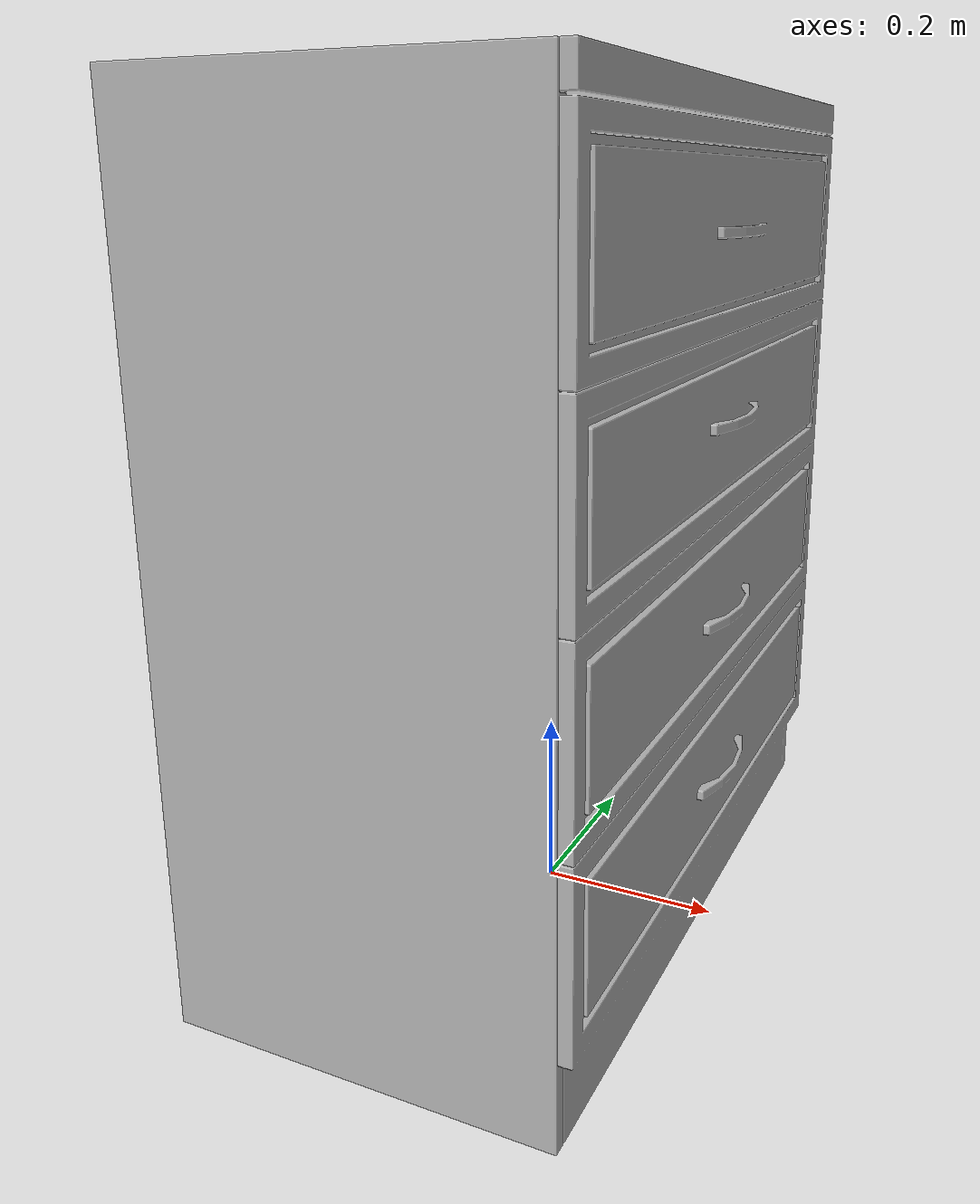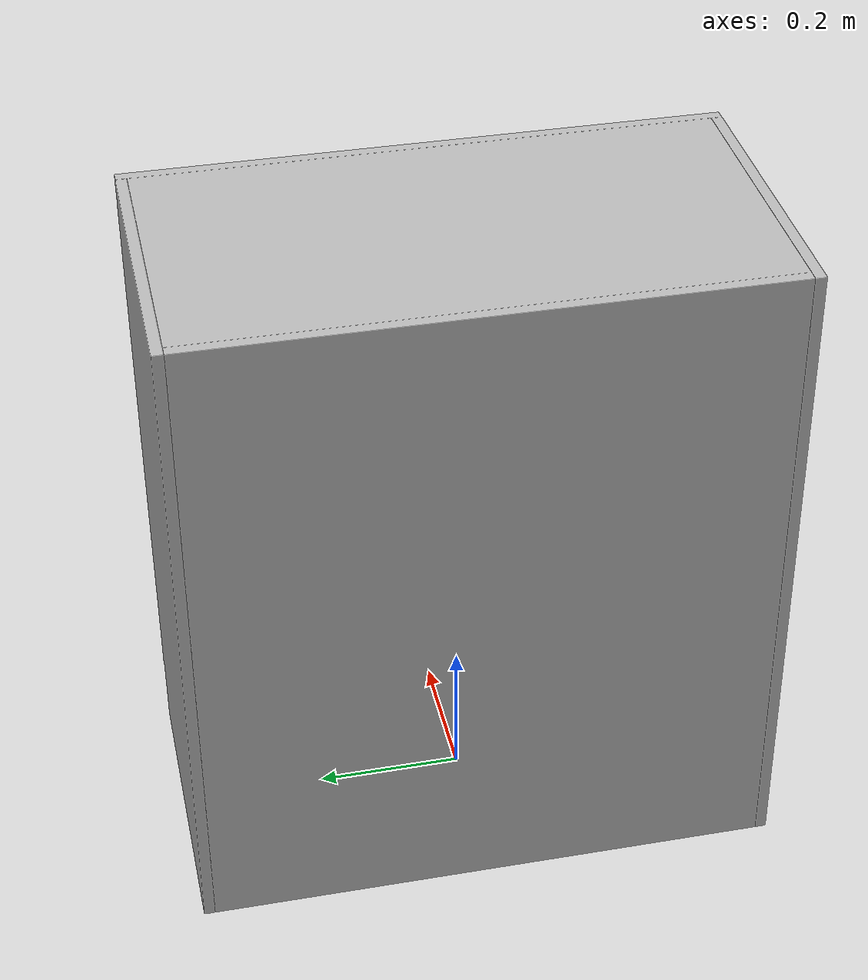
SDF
<?xml version='1.0'?>
<sdf version='1.4'>
  <model name='397'>
    <pose>0 0 0 0 0 0</pose>
    <static>true</static>
    <link name='link'>
      <collision name='collision'>
        <pose>0 0 0 0 0 0</pose>
        <geometry>
          <box>
            <size>0.449634 0.79977 2</size>
          </box>
        </geometry>
      </collision>
      <visual name='visual'>
        <pose>0 0 0 0 0 0</pose>
        <geometry>
          <mesh><uri>model://397/397.dae</uri></mesh>
        </geometry>
      </visual>
    </link>
  </model>
</sdf>
